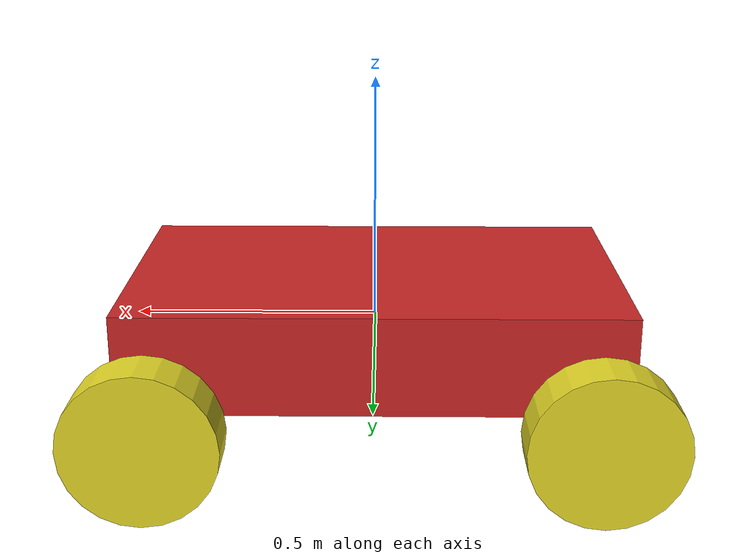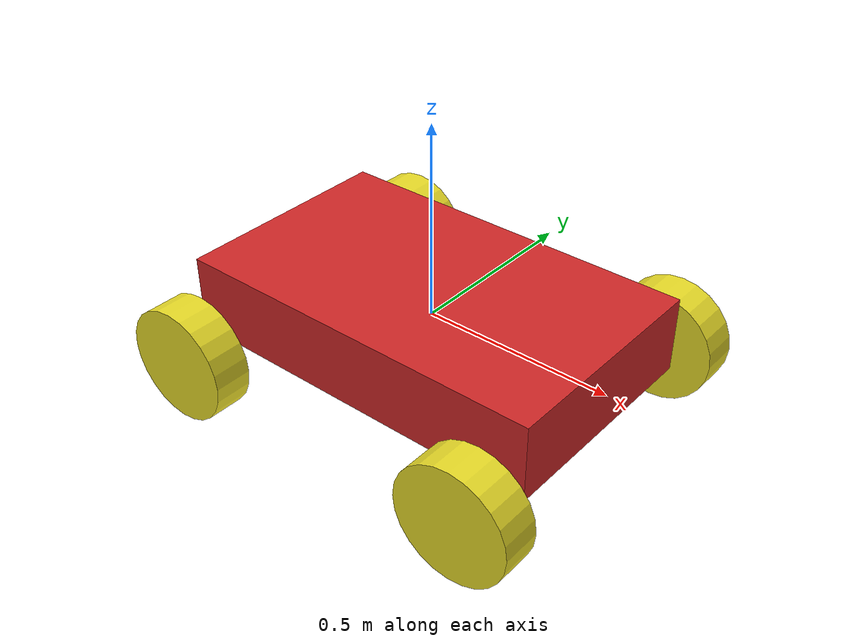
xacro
<?xml version="1.0"?>
<!--every xacro file start with this line-->
<!--DESCRIPTION OF THE 4-WHEELED ROBOT-->

<robot name= "easy_robot_sim" xmlns:xacro="http://www.ros.org/wiki/xacro"> <!--name of the robot-->

    <!--Body dimension-->
    <xacro:property name="body_link_x_dim" value="1"/>
    <xacro:property name="body_link_y_dim" value="0.6"/>
    <xacro:property name="body_link_z_dim" value="0.2"/>

    <!--Wheel dimensions-->
    <xacro:property name="wheel_link_radius" value="0.15"/>
    <xacro:property name="wheel_link_length" value="0.1"/>
    <xacro:property name="wheel_link_z_location" value="-0.1"/>

    <!--Material density-->
    <xacro:property name="body_density" value="2710.0"/> <!--both made of alluminium-->
    <xacro:property name="wheel_density" value="2710.0"/>

    <!--Pi constant-->
    <xacro:property name="pi_const" value="3.14159265"/>

    <!--Robot body and wheel mass-->
    <xacro:property name="body_mass" value="${body_density*body_link_x_dim*body_link_y_dim*body_link_z_dim}"/>
    <xacro:property name="wheel_mass" value="${wheel_density*wheel_link_radius*wheel_link_radius*pi_const*wheel_link_length}"/>

    <!--Moment of inertia of the wheel-->
    <xacro:property name="Iz_wheel" value="${0.5*wheel_mass*wheel_link_radius*wheel_link_radius}"/>
    <xacro:property name="I_wheel" value="${(1.0/12.0)*wheel_mass*(3.0*wheel_link_radius*wheel_link_radius+wheel_link_length*wheel_link_length)}"/>

    <!--Macro (used in the code)-->
    <xacro:macro name="inertia_wheel">
        <inertial>
            <origin rpy="0 0 0" xyz="0 0 0"/>
            <mass value="${wheel_mass}"/>
            <inertia ixx="${I_wheel}" ixy="0.0" ixz="0.0" iyy="${I_wheel}" iyz="0.0" izz="${Iz_wheel}"/>
        </inertial>
    </xacro:macro>

    <!--Extra gazebo option and motion control driver in order to be able to pilote the robot-->
    <xacro:include filename="$(find robot_model_pkg)/urdf/robot.gazebo"/>

    <!--Definition of link and joint (required by gazebo, default parent)-->
    <link name="dummy">
    </link>
    <joint name="dummy_joint" type="fixed">
        <parent link="dummy"/>
        <child link="body_link"/>
        <origin xyz="0.0 0.0 0.0" rpy="0.0 0.0 0.0"/>
    </joint>

    <!--Link of the robot body-->
    <link name="body_link">
        <visual>
                <geometry>
                    <box size="${body_link_x_dim} ${body_link_y_dim} ${body_link_z_dim}"/>
                </geometry>
        </visual>

        <collision>
                <geometry>
                    <box size="${body_link_x_dim} ${body_link_y_dim} ${body_link_z_dim}"/>
                </geometry>
                <origin xyz="0.0 0.0 0.0" rpy="0.0 0.0 0.0"/>
        </collision>

        <inertial>
            <origin xyz="0.0 0.0 0.0" rpy="0.0 0.0 0.0"/>
            <mass value="${body_mass}"/>
            <inertia
                ixx="${(1/12.0)*body_mass*(body_link_y_dim*body_link_y_dim + body_link_z_dim*body_link_z_dim)}"
                ixy="0.0"
                ixz="0.0"
                iyy="${(1/12.0)*body_mass*(body_link_x_dim*body_link_x_dim + body_link_z_dim*body_link_z_dim)}"
                iyz="0.0"
                izz="${(1/12.0)*body_mass*(body_link_x_dim*body_link_x_dim + body_link_y_dim*body_link_y_dim)}"
            />
        </inertial>
    </link>

    <!--Joint of the wheels-->

    <!--rear rigth wheel-->
    <joint name="wheel1_joint" type="continuous">
        <parent link="body_link"/>
        <child link="wheel1_link"/>
        <origin xyz="${-(body_link_x_dim/2 - wheel_link_radius/2)} ${-(body_link_y_dim/2 + 1.1*wheel_link_length)} ${wheel_link_z_location}" rpy="0.0 0.0 0.0"/>
        <axis xyz="0.0 1.0 0.0"/> <!--wheel rotate along axes y-->
        <limit effort="1000.0" velocity="1000.0"/>
        <dynamics damping="1.0" friction="1.0"/>
    </joint>

    <link name="wheel1_link">
        <visual>
            <origin xyz="0.0 0.0 0.0" rpy="1.570795 0.0 0.0"/> <!--1.57 is 90° in radiant (the cilinder must lean on the soil)-->
            <geometry>
                <cylinder radius="${wheel_link_radius}" length="${wheel_link_length}"/>
            </geometry>
        </visual>
        <collision>
            <origin xyz="0.0 0.0 0.0" rpy="1.570795 0.0 0.0"/>
            <geometry>
                <cylinder radius="${wheel_link_radius}" length="${wheel_link_length}"/>
            </geometry>
        </collision>
        <xacro:inertia_wheel/> <!--using macro can speed up the writing of the code-->
    </link>

    <!--rear left wheel-->
    <joint name="wheel2_joint" type="continuous">
        <parent link="body_link"/>
        <child link="wheel2_link"/>
        <origin xyz="${-(body_link_x_dim/2 - wheel_link_radius/2)} ${+(body_link_y_dim/2 + 1.1*wheel_link_length)} ${wheel_link_z_location}" rpy="0.0 0.0 0.0"/>
        <axis xyz="0.0 1.0 0.0"/> <!--wheel rotate along axes y-->
        <limit effort="1000.0" velocity="1000.0"/>
        <dynamics damping="1.0" friction="1.0"/>
    </joint>

    <link name="wheel2_link">
        <visual>
            <origin xyz="0.0 0.0 0.0" rpy="1.570795 0.0 0.0"/> <!--1.57 is 90° in radiant (the cilinder must lean on the soil)-->
            <geometry>
                <cylinder radius="${wheel_link_radius}" length="${wheel_link_length}"/>
            </geometry>
        </visual>
        <collision>
            <origin xyz="0.0 0.0 0.0" rpy="1.570795 0.0 0.0"/>
            <geometry>
                <cylinder radius="${wheel_link_radius}" length="${wheel_link_length}"/>
            </geometry>
        </collision>
        <xacro:inertia_wheel/> <!--using macro can speed up the writing of the code-->
    </link>

    <!--front rigth wheel-->
    <joint name="wheel3_joint" type="continuous">
        <parent link="body_link"/>
        <child link="wheel3_link"/>
        <origin xyz="${+(body_link_x_dim/2 - wheel_link_radius/2)} ${-(body_link_y_dim/2 + 1.1*wheel_link_length)} ${wheel_link_z_location}" rpy="0.0 0.0 0.0"/>
        <axis xyz="0.0 1.0 0.0"/> <!--wheel rotate along axes y-->
        <limit effort="1000.0" velocity="1000.0"/>
        <dynamics damping="1.0" friction="1.0"/>
    </joint>

    <link name="wheel3_link">
        <visual>
            <origin xyz="0.0 0.0 0.0" rpy="1.570795 0.0 0.0"/> <!--1.57 is 90° in radiant (the cilinder must lean on the soil)-->
            <geometry>
                <cylinder radius="${wheel_link_radius}" length="${wheel_link_length}"/>
            </geometry>
        </visual>
        <collision>
            <origin xyz="0.0 0.0 0.0" rpy="1.570795 0.0 0.0"/>
            <geometry>
                <cylinder radius="${wheel_link_radius}" length="${wheel_link_length}"/>
            </geometry>
        </collision>
        <xacro:inertia_wheel/> <!--using macro can speed up the writing of the code-->
    </link>

    <!--front left wheel-->
    <joint name="wheel4_joint" type="continuous">
        <parent link="body_link"/>
        <child link="wheel4_link"/>
        <origin xyz="${+(body_link_x_dim/2 - wheel_link_radius/2)} ${+(body_link_y_dim/2 + 1.1*wheel_link_length)} ${wheel_link_z_location}" rpy="0.0 0.0 0.0"/>
        <axis xyz="0.0 1.0 0.0"/> <!--wheel rotate along axes y-->
        <limit effort="1000.0" velocity="1000.0"/>
        <dynamics damping="1.0" friction="1.0"/>
    </joint>

    <link name="wheel4_link">
        <visual>
            <origin xyz="0.0 0.0 0.0" rpy="1.570795 0.0 0.0"/> <!--1.57 is 90° in radiant (the cilinder must lean on the soil)-->
            <geometry>
                <cylinder radius="${wheel_link_radius}" length="${wheel_link_length}"/>
            </geometry>
        </visual>
        <collision>
            <origin xyz="0.0 0.0 0.0" rpy="1.570795 0.0 0.0"/>
            <geometry>
                <cylinder radius="${wheel_link_radius}" length="${wheel_link_length}"/>
            </geometry>
        </collision>
        <xacro:inertia_wheel/> <!--using macro can speed up the writing of the code-->
    </link>

</robot>
